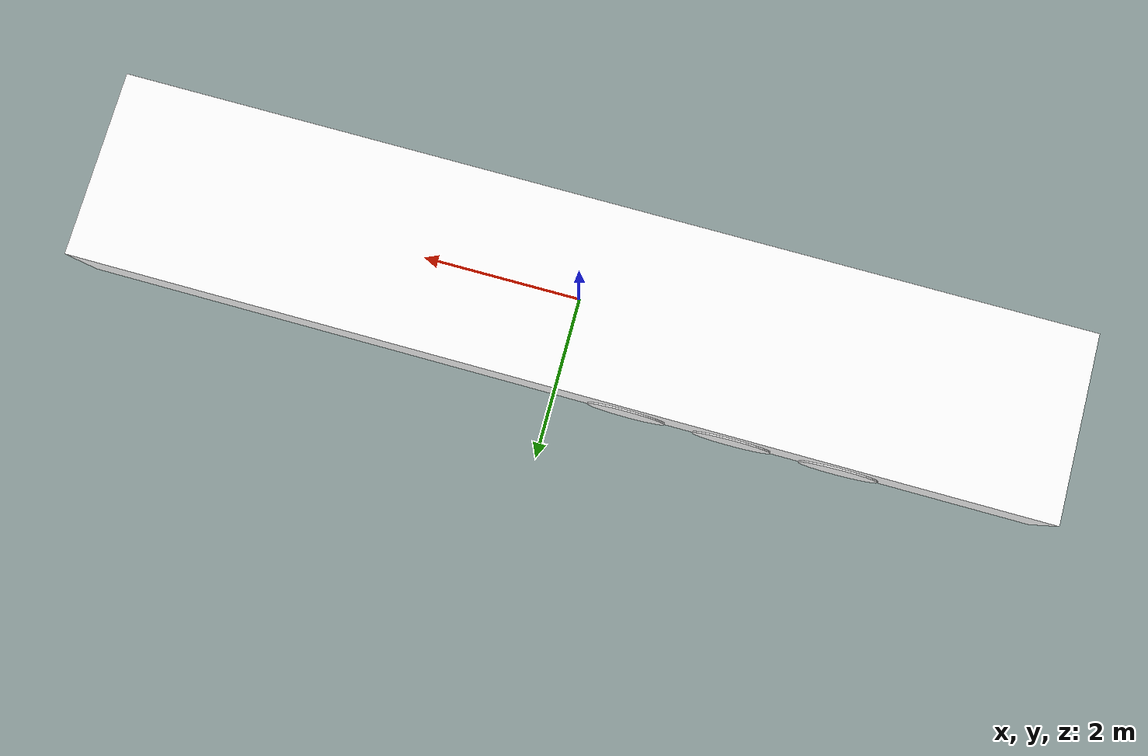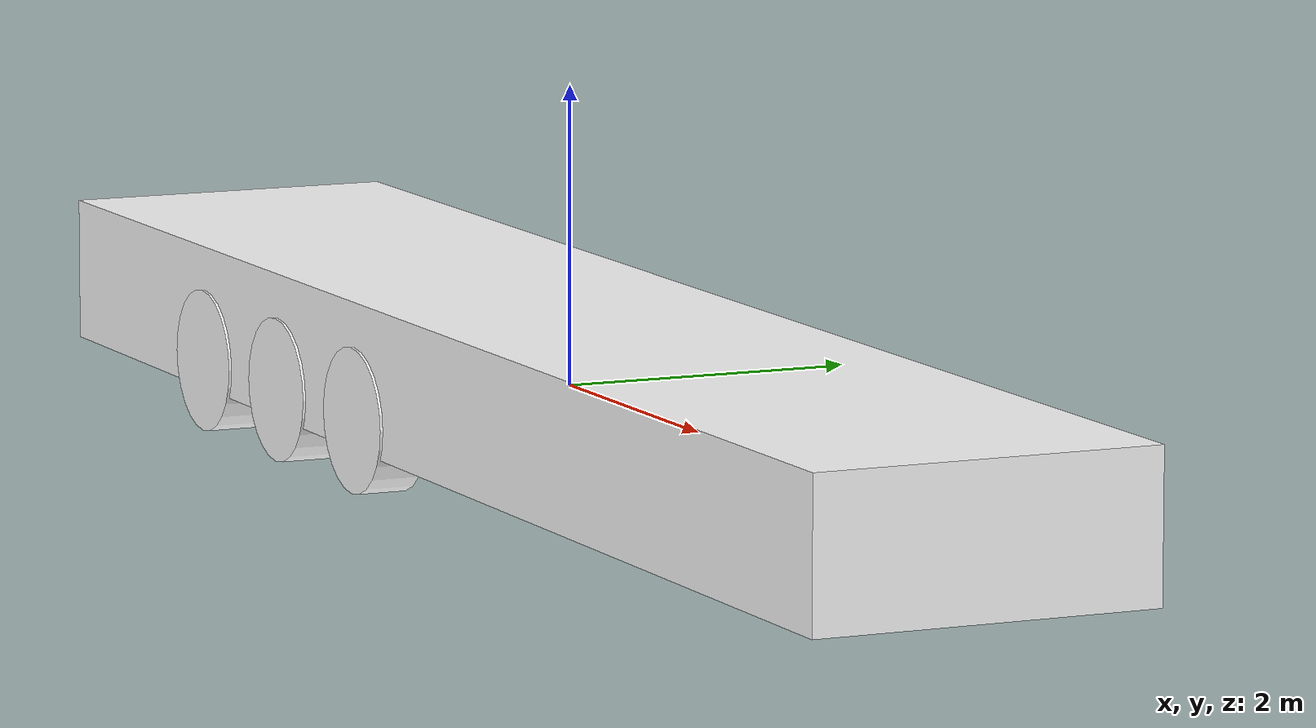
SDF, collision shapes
<?xml version='1.0'?>
<sdf version='1.6'>
<model name="daf_xf_450_flatbed_trailer">
  <link name='base_link'>
    <inertial>
      <pose>0 0 0 0 0 0</pose>
      <mass>40</mass>
      <inertia>
        <ixx>2.7</ixx>
        <ixy>0</ixy>
        <ixz>0</ixz>
        <iyy>2.7</iyy>
        <iyz>0</iyz>
        <izz>4.05</izz>
      </inertia>
    </inertial>
    <collision name='collision'>
      <pose>0 0 0 0 0 0</pose>
      <geometry>
        <box>
          <size>12.2 2.34 1.0</size>
        </box>
      </geometry>
    </collision>
    <visual name='visual'>
      <pose>-0.405 0 0.28 0 0 0</pose>
      <geometry>
        <mesh>
          <uri>model://daf_xf_450_flatbed_trailer/meshes/trailer_chassis.dae</uri>
        </mesh>
      </geometry>
      <material>
        <ambient>1 1 1</ambient>
        <diffuse>1 1 1</diffuse>
        <specular>0.1 0.1 0.1</specular>
        <pbr>
          <metal>
            <albedo_map>model://daf_xf_450_flatbed_trailer/materials/textures/silver_metal/silver_metal_diffuse.jpg</albedo_map>
            <metalness_map>model://daf_xf_450_flatbed_trailer/materials/textures/silver_metal/silver_metal_metallic.jpg</metalness_map>
            <normal_map>model://daf_xf_450_flatbed_trailer/materials/textures/silver_metal/silver_metal_normal.jpg</normal_map>
            <roughness_map>model://daf_xf_450_flatbed_trailer/materials/textures/silver_metal/silver_metal_roughness.jpg</roughness_map>
            <roughness>0.5</roughness>
            <metalness>0.5</metalness>
          </metal>
        </pbr>
      </material>
    </visual>
  </link>

  <joint name='left_wheel_1_joint' type='revolute'>
    <pose relative_to='base_link'>-0.92 1.02 -0.3 -1.5708 0 0</pose>
    <parent>base_link</parent>
    <child>left_wheel_1_link</child>
    <axis>
      <xyz>0 0 1</xyz>
      <limit>
        <lower>-1e+16</lower>
        <upper>1e+16</upper>
      </limit>
      <dynamics>
        <damping>0.0001</damping>
      </dynamics>
    </axis>
  </joint>
  <link name='left_wheel_1_link'>
    <pose relative_to='left_wheel_1_joint'>0 0 0 0 0 0</pose>
    <inertial>
      <pose>0 0 0 0 0 0</pose>
      <mass>40</mass>
      <inertia>
        <ixx>2.831063333</ixx>
        <ixy>0</ixy>
        <ixz>0</ixz>
        <iyy>2.831063333</iyy>
        <iyz>0</iyz>
        <izz>4.9005</izz>
      </inertia>
    </inertial>
    <collision name='collision'>
      <pose>0 0 0 0 0 0</pose>
      <geometry>
        <cylinder>
          <radius>0.495</radius>
          <length>0.338</length>
        </cylinder>
      </geometry>
    </collision>
    <visual name='tyre_visual'>
      <pose>0 0 0 0 0 0</pose>
      <geometry>
        <mesh>
          <uri>model://daf_xf_450_flatbed_trailer/meshes/trailer_wheel_tyre.dae</uri>
        </mesh>
      </geometry>
      <material>
        <ambient>1 1 1</ambient>
        <diffuse>1 1 1</diffuse>
        <specular>1 1 1</specular>
        <pbr>
          <metal>
            <albedo_map>model://daf_xf_450_flatbed_trailer/materials/textures/rubber_01/rubber_01_diffuse.jpg</albedo_map>
            <normal_map>model://daf_xf_450_flatbed_trailer/materials/textures/rubber_01/rubber_01_normal.jpg</normal_map>
            <roughness_map>model://daf_xf_450_flatbed_trailer/materials/textures/rubber_01/rubber_01_roughness.jpg</roughness_map>
            <roughness>1.0</roughness>
            <metalness>0.0</metalness>
          </metal>
        </pbr>
      </material>
    </visual>
    <visual name='hub_visual'>
      <pose>0 0 0 0 0 0</pose>
      <geometry>
        <mesh>
          <uri>model://daf_xf_450_flatbed_trailer/meshes/trailer_wheel_hub.dae</uri>
        </mesh>
      </geometry>
        <material>
          <ambient>1 1 1</ambient>
          <diffuse>1 1 1</diffuse>
          <specular>1 1 1</specular>
          <pbr>
            <metal>
              <albedo_map>model://daf_xf_450_flatbed_trailer/materials/textures/silver_metal/silver_metal_diffuse.jpg</albedo_map>
              <metalness_map>model://daf_xf_450_flatbed_trailer/materials/textures/silver_metal/silver_metal_metallic.jpg</metalness_map>
              <normal_map>model://daf_xf_450_flatbed_trailer/materials/textures/silver_metal/silver_metal_normal.jpg</normal_map>
              <roughness_map>model://daf_xf_450_flatbed_trailer/materials/textures/silver_metal/silver_metal_roughness.jpg</roughness_map>
              <roughness>0.5</roughness>
              <metalness>1.0</metalness>
            </metal>
          </pbr>
        </material>
    </visual>
  </link>

  <joint name='right_wheel_1_joint' type='revolute'>
    <pose relative_to='base_link'>-0.92 -1.02 -0.3 -1.5708 0 0</pose>
    <parent>base_link</parent>
    <child>right_wheel_1_link</child>
    <axis>
      <xyz>0 0 1</xyz>
      <limit>
        <lower>-1e+16</lower>
        <upper>1e+16</upper>
      </limit>
      <dynamics>
        <damping>0.0001</damping>
      </dynamics>
    </axis>
  </joint>
  <link name='right_wheel_1_link'>
    <pose relative_to='right_wheel_1_joint'>0 0 0 0 0 0</pose>
    <inertial>
      <pose>0 0 0 0 0 0</pose>
      <mass>40</mass>
      <inertia>
        <ixx>2.831063333</ixx>
        <ixy>0</ixy>
        <ixz>0</ixz>
        <iyy>2.831063333</iyy>
        <iyz>0</iyz>
        <izz>4.9005</izz>
      </inertia>
    </inertial>
    <collision name='collision'>
      <pose>0 0 0 0 0 0</pose>
      <geometry>
        <cylinder>
          <radius>0.495</radius>
          <length>0.338</length>
        </cylinder>
      </geometry>
    </collision>
    <visual name='tyre_visual'>
      <pose>0 0 0 3.141592654 0 0</pose>
      <geometry>
        <mesh>
          <uri>model://daf_xf_450_flatbed_trailer/meshes/trailer_wheel_tyre.dae</uri>
        </mesh>
      </geometry>
      <material>
        <ambient>1 1 1</ambient>
        <diffuse>1 1 1</diffuse>
        <specular>1 1 1</specular>
        <pbr>
          <metal>
            <albedo_map>model://daf_xf_450_flatbed_trailer/materials/textures/rubber_01/rubber_01_diffuse.jpg</albedo_map>
            <normal_map>model://daf_xf_450_flatbed_trailer/materials/textures/rubber_01/rubber_01_normal.jpg</normal_map>
            <roughness_map>model://daf_xf_450_flatbed_trailer/materials/textures/rubber_01/rubber_01_roughness.jpg</roughness_map>
            <roughness>1.0</roughness>
            <metalness>0.0</metalness>
          </metal>
        </pbr>
      </material>
    </visual>
    <visual name='hub_visual'>
      <pose>0 0 0 3.141592654 0 0</pose>
      <geometry>
        <mesh>
          <uri>model://daf_xf_450_flatbed_trailer/meshes/trailer_wheel_hub.dae</uri>
        </mesh>
      </geometry>
        <material>
          <ambient>1 1 1</ambient>
          <diffuse>1 1 1</diffuse>
          <specular>1 1 1</specular>
          <pbr>
            <metal>
              <albedo_map>model://daf_xf_450_flatbed_trailer/materials/textures/silver_metal/silver_metal_diffuse.jpg</albedo_map>
              <metalness_map>model://daf_xf_450_flatbed_trailer/materials/textures/silver_metal/silver_metal_metallic.jpg</metalness_map>
              <normal_map>model://daf_xf_450_flatbed_trailer/materials/textures/silver_metal/silver_metal_normal.jpg</normal_map>
              <roughness_map>model://daf_xf_450_flatbed_trailer/materials/textures/silver_metal/silver_metal_roughness.jpg</roughness_map>
              <roughness>0.5</roughness>
              <metalness>1.0</metalness>
            </metal>
          </pbr>
        </material>
    </visual>
  </link>

  <joint name='left_wheel_2_joint' type='revolute'>
    <pose relative_to='base_link'>-2.27 1.02 -0.3 -1.5708 0 0</pose>
    <parent>base_link</parent>
    <child>left_wheel_2_link</child>
    <axis>
      <xyz>0 0 1</xyz>
      <limit>
        <lower>-1e+16</lower>
        <upper>1e+16</upper>
      </limit>
      <dynamics>
        <damping>0.0001</damping>
      </dynamics>
    </axis>
  </joint>
  <link name='left_wheel_2_link'>
    <pose relative_to='left_wheel_2_joint'>0 0 0 0 0 0</pose>
    <inertial>
      <pose>0 0 0 0 0 0</pose>
      <mass>40</mass>
      <inertia>
        <ixx>2.831063333</ixx>
        <ixy>0</ixy>
        <ixz>0</ixz>
        <iyy>2.831063333</iyy>
        <iyz>0</iyz>
        <izz>4.9005</izz>
      </inertia>
    </inertial>
    <collision name='collision'>
      <pose>0 0 0 0 0 0</pose>
      <geometry>
        <cylinder>
          <radius>0.495</radius>
          <length>0.338</length>
        </cylinder>
      </geometry>
    </collision>
    <visual name='tyre_visual'>
      <pose>0 0 0 0 0 0</pose>
      <geometry>
        <mesh>
          <uri>model://daf_xf_450_flatbed_trailer/meshes/trailer_wheel_tyre.dae</uri>
        </mesh>
      </geometry>
      <material>
        <ambient>1 1 1</ambient>
        <diffuse>1 1 1</diffuse>
        <specular>1 1 1</specular>
        <pbr>
          <metal>
            <albedo_map>model://daf_xf_450_flatbed_trailer/materials/textures/rubber_01/rubber_01_diffuse.jpg</albedo_map>
            <normal_map>model://daf_xf_450_flatbed_trailer/materials/textures/rubber_01/rubber_01_normal.jpg</normal_map>
            <roughness_map>model://daf_xf_450_flatbed_trailer/materials/textures/rubber_01/rubber_01_roughness.jpg</roughness_map>
            <roughness>1.0</roughness>
            <metalness>0.0</metalness>
          </metal>
        </pbr>
      </material>
    </visual>
    <visual name='hub_visual'>
      <pose>0 0 0 0 0 0</pose>
      <geometry>
        <mesh>
          <uri>model://daf_xf_450_flatbed_trailer/meshes/trailer_wheel_hub.dae</uri>
        </mesh>
      </geometry>
        <material>
          <ambient>1 1 1</ambient>
          <diffuse>1 1 1</diffuse>
          <specular>1 1 1</specular>
          <pbr>
            <metal>
              <albedo_map>model://daf_xf_450_flatbed_trailer/materials/textures/silver_metal/silver_metal_diffuse.jpg</albedo_map>
              <metalness_map>model://daf_xf_450_flatbed_trailer/materials/textures/silver_metal/silver_metal_metallic.jpg</metalness_map>
              <normal_map>model://daf_xf_450_flatbed_trailer/materials/textures/silver_metal/silver_metal_normal.jpg</normal_map>
              <roughness_map>model://daf_xf_450_flatbed_trailer/materials/textures/silver_metal/silver_metal_roughness.jpg</roughness_map>
              <roughness>0.5</roughness>
              <metalness>1.0</metalness>
            </metal>
          </pbr>
        </material>
    </visual>
  </link>

  <joint name='right_wheel_2_joint' type='revolute'>
    <pose relative_to='base_link'>-2.27 -1.02 -0.3 -1.5708 0 0</pose>
    <parent>base_link</parent>
    <child>right_wheel_2_link</child>
    <axis>
      <xyz>0 0 1</xyz>
      <limit>
        <lower>-1e+16</lower>
        <upper>1e+16</upper>
      </limit>
      <dynamics>
        <damping>0.0001</damping>
      </dynamics>
    </axis>
  </joint>
  <link name='right_wheel_2_link'>
    <pose relative_to='right_wheel_2_joint'>0 0 0 0 0 0</pose>
    <inertial>
      <pose>0 0 0 0 0 0</pose>
      <mass>40</mass>
      <inertia>
        <ixx>2.831063333</ixx>
        <ixy>0</ixy>
        <ixz>0</ixz>
        <iyy>2.831063333</iyy>
        <iyz>0</iyz>
        <izz>4.9005</izz>
      </inertia>
    </inertial>
    <collision name='collision'>
      <pose>0 0 0 0 0 0</pose>
      <geometry>
        <cylinder>
          <radius>0.495</radius>
          <length>0.338</length>
        </cylinder>
      </geometry>
    </collision>
    <visual name='tyre_visual'>
      <pose>0 0 0 3.141592654 0 0</pose>
      <geometry>
        <mesh>
          <uri>model://daf_xf_450_flatbed_trailer/meshes/trailer_wheel_tyre.dae</uri>
        </mesh>
      </geometry>
      <material>
        <ambient>1 1 1</ambient>
        <diffuse>1 1 1</diffuse>
        <specular>1 1 1</specular>
        <pbr>
          <metal>
            <albedo_map>model://daf_xf_450_flatbed_trailer/materials/textures/rubber_01/rubber_01_diffuse.jpg</albedo_map>
            <normal_map>model://daf_xf_450_flatbed_trailer/materials/textures/rubber_01/rubber_01_normal.jpg</normal_map>
            <roughness_map>model://daf_xf_450_flatbed_trailer/materials/textures/rubber_01/rubber_01_roughness.jpg</roughness_map>
            <roughness>1.0</roughness>
            <metalness>0.0</metalness>
          </metal>
        </pbr>
      </material>
    </visual>
    <visual name='hub_visual'>
      <pose>0 0 0 3.141592654 0 0</pose>
      <geometry>
        <mesh>
          <uri>model://daf_xf_450_flatbed_trailer/meshes/trailer_wheel_hub.dae</uri>
        </mesh>
      </geometry>
        <material>
          <ambient>1 1 1</ambient>
          <diffuse>1 1 1</diffuse>
          <specular>1 1 1</specular>
          <pbr>
            <metal>
              <albedo_map>model://daf_xf_450_flatbed_trailer/materials/textures/silver_metal/silver_metal_diffuse.jpg</albedo_map>
              <metalness_map>model://daf_xf_450_flatbed_trailer/materials/textures/silver_metal/silver_metal_metallic.jpg</metalness_map>
              <normal_map>model://daf_xf_450_flatbed_trailer/materials/textures/silver_metal/silver_metal_normal.jpg</normal_map>
              <roughness_map>model://daf_xf_450_flatbed_trailer/materials/textures/silver_metal/silver_metal_roughness.jpg</roughness_map>
              <roughness>0.5</roughness>
              <metalness>1.0</metalness>
            </metal>
          </pbr>
        </material>
    </visual>
  </link>

  <joint name='left_wheel_3_joint' type='revolute'>
    <pose relative_to='base_link'>-3.625 1.02 -0.3 -1.5708 0 0</pose>
    <parent>base_link</parent>
    <child>left_wheel_3_link</child>
    <axis>
      <xyz>0 0 1</xyz>
      <limit>
        <lower>-1e+16</lower>
        <upper>1e+16</upper>
      </limit>
      <dynamics>
        <damping>0.0001</damping>
      </dynamics>
    </axis>
  </joint>
  <link name='left_wheel_3_link'>
    <pose relative_to='left_wheel_3_joint'>0 0 0 0 0 0</pose>
    <inertial>
      <pose>0 0 0 0 0 0</pose>
      <mass>40</mass>
      <inertia>
        <ixx>2.831063333</ixx>
        <ixy>0</ixy>
        <ixz>0</ixz>
        <iyy>2.831063333</iyy>
        <iyz>0</iyz>
        <izz>4.9005</izz>
      </inertia>
    </inertial>
    <collision name='collision'>
      <pose>0 0 0 0 0 0</pose>
      <geometry>
        <cylinder>
          <radius>0.495</radius>
          <length>0.338</length>
        </cylinder>
      </geometry>
    </collision>
    <visual name='tyre_visual'>
      <pose>0 0 0 0 0 0</pose>
      <geometry>
        <mesh>
          <uri>model://daf_xf_450_flatbed_trailer/meshes/trailer_wheel_tyre.dae</uri>
        </mesh>
      </geometry>
      <material>
        <ambient>1 1 1</ambient>
        <diffuse>1 1 1</diffuse>
        <specular>1 1 1</specular>
        <pbr>
          <metal>
            <albedo_map>model://daf_xf_450_flatbed_trailer/materials/textures/rubber_01/rubber_01_diffuse.jpg</albedo_map>
            <normal_map>model://daf_xf_450_flatbed_trailer/materials/textures/rubber_01/rubber_01_normal.jpg</normal_map>
            <roughness_map>model://daf_xf_450_flatbed_trailer/materials/textures/rubber_01/rubber_01_roughness.jpg</roughness_map>
            <roughness>1.0</roughness>
            <metalness>0.0</metalness>
          </metal>
        </pbr>
      </material>
    </visual>
    <visual name='hub_visual'>
      <pose>0 0 0 0 0 0</pose>
      <geometry>
        <mesh>
          <uri>model://daf_xf_450_flatbed_trailer/meshes/trailer_wheel_hub.dae</uri>
        </mesh>
      </geometry>
        <material>
          <ambient>1 1 1</ambient>
          <diffuse>1 1 1</diffuse>
          <specular>1 1 1</specular>
          <pbr>
            <metal>
              <albedo_map>model://daf_xf_450_flatbed_trailer/materials/textures/silver_metal/silver_metal_diffuse.jpg</albedo_map>
              <metalness_map>model://daf_xf_450_flatbed_trailer/materials/textures/silver_metal/silver_metal_metallic.jpg</metalness_map>
              <normal_map>model://daf_xf_450_flatbed_trailer/materials/textures/silver_metal/silver_metal_normal.jpg</normal_map>
              <roughness_map>model://daf_xf_450_flatbed_trailer/materials/textures/silver_metal/silver_metal_roughness.jpg</roughness_map>
              <roughness>0.5</roughness>
              <metalness>1.0</metalness>
            </metal>
          </pbr>
        </material>
    </visual>
  </link>

  <joint name='right_wheel_3_joint' type='revolute'>
    <pose relative_to='base_link'>-3.625 -1.02 -0.3 -1.5708 0 0</pose>
    <parent>base_link</parent>
    <child>right_wheel_3_link</child>
    <axis>
      <xyz>0 0 1</xyz>
      <limit>
        <lower>-1e+16</lower>
        <upper>1e+16</upper>
      </limit>
      <dynamics>
        <damping>0.0001</damping>
      </dynamics>
    </axis>
  </joint>
  <link name='right_wheel_3_link'>
    <pose relative_to='right_wheel_3_joint'>0 0 0 0 0 0</pose>
    <inertial>
      <pose>0 0 0 0 0 0</pose>
      <mass>40</mass>
      <inertia>
        <ixx>2.831063333</ixx>
        <ixy>0</ixy>
        <ixz>0</ixz>
        <iyy>2.831063333</iyy>
        <iyz>0</iyz>
        <izz>4.9005</izz>
      </inertia>
    </inertial>
    <collision name='collision'>
      <pose>0 0 0 0 0 0</pose>
      <geometry>
        <cylinder>
          <radius>0.495</radius>
          <length>0.338</length>
        </cylinder>
      </geometry>
    </collision>
    <visual name='tyre_visual'>
      <pose>0 0 0 3.141592654 0 0</pose>
      <geometry>
        <mesh>
          <uri>model://daf_xf_450_flatbed_trailer/meshes/trailer_wheel_tyre.dae</uri>
        </mesh>
      </geometry>
      <material>
        <ambient>1 1 1</ambient>
        <diffuse>1 1 1</diffuse>
        <specular>1 1 1</specular>
        <pbr>
          <metal>
            <albedo_map>model://daf_xf_450_flatbed_trailer/materials/textures/rubber_01/rubber_01_diffuse.jpg</albedo_map>
            <normal_map>model://daf_xf_450_flatbed_trailer/materials/textures/rubber_01/rubber_01_normal.jpg</normal_map>
            <roughness_map>model://daf_xf_450_flatbed_trailer/materials/textures/rubber_01/rubber_01_roughness.jpg</roughness_map>
            <roughness>1.0</roughness>
            <metalness>0.0</metalness>
          </metal>
        </pbr>
      </material>
    </visual>
    <visual name='hub_visual'>
      <pose>0 0 0 3.141592654 0 0</pose>
      <geometry>
        <mesh>
          <uri>model://daf_xf_450_flatbed_trailer/meshes/trailer_wheel_hub.dae</uri>
        </mesh>
      </geometry>
        <material>
          <ambient>1 1 1</ambient>
          <diffuse>1 1 1</diffuse>
          <specular>1 1 1</specular>
          <pbr>
            <metal>
              <albedo_map>model://daf_xf_450_flatbed_trailer/materials/textures/silver_metal/silver_metal_diffuse.jpg</albedo_map>
              <metalness_map>model://daf_xf_450_flatbed_trailer/materials/textures/silver_metal/silver_metal_metallic.jpg</metalness_map>
              <normal_map>model://daf_xf_450_flatbed_trailer/materials/textures/silver_metal/silver_metal_normal.jpg</normal_map>
              <roughness_map>model://daf_xf_450_flatbed_trailer/materials/textures/silver_metal/silver_metal_roughness.jpg</roughness_map>
              <roughness>0.5</roughness>
              <metalness>1.0</metalness>
            </metal>
          </pbr>
        </material>
    </visual>
  </link>

  <!-- Sensors -->
  <link name='imu_link'>
    <inertial>
      <mass>0.01</mass>
      <inertia>
        <ixx>1.66667E-07</ixx>
        <ixy>0</ixy>
        <ixz>0</ixz>
        <iyy>1.66667E-07</iyy>
        <iyz>0</iyz>
        <izz>1.66667E-07</izz>
      </inertia>
    </inertial>
    <sensor name="imu_sensor" type="imu">
      <pose>0 0 0 3.141593 0 0</pose>
      <always_on>1</always_on>
      <update_rate>1000.0</update_rate>
    </sensor>
  </link>
  <joint name='imu_joint' type='revolute'>
    <child>imu_link</child>
    <parent>base_link</parent>
    <axis>
      <xyz>0 0 1</xyz>
      <limit>
        <lower>0</lower>
        <upper>0</upper>
      </limit>
      <dynamics>
        <damping>0.0001</damping>
      </dynamics>
      <use_parent_model_frame>1</use_parent_model_frame>
    </axis>
  </joint>

  <!-- Plugins -->
  <plugin name="ignition::gazebo::systems::JointStatePublisher"
      filename="libignition-gazebo-joint-state-publisher-system.so">
  </plugin>

  <plugin name="ArduPilotPlugin"
      filename="libArduPilotPlugin.so">
    <fdm_addr>127.0.0.1</fdm_addr>
    <fdm_port_in>9012</fdm_port_in>
    <connectionTimeoutMaxCount>5</connectionTimeoutMaxCount>
    <modelXYZToAirplaneXForwardZDown>0 0 0 3.141593 0 0</modelXYZToAirplaneXForwardZDown>
    <gazeboXYZToNED>0 0 0 3.141593 0 0</gazeboXYZToNED>
    <imuName>imu_sensor</imuName>
  </plugin>

</model>
</sdf>
